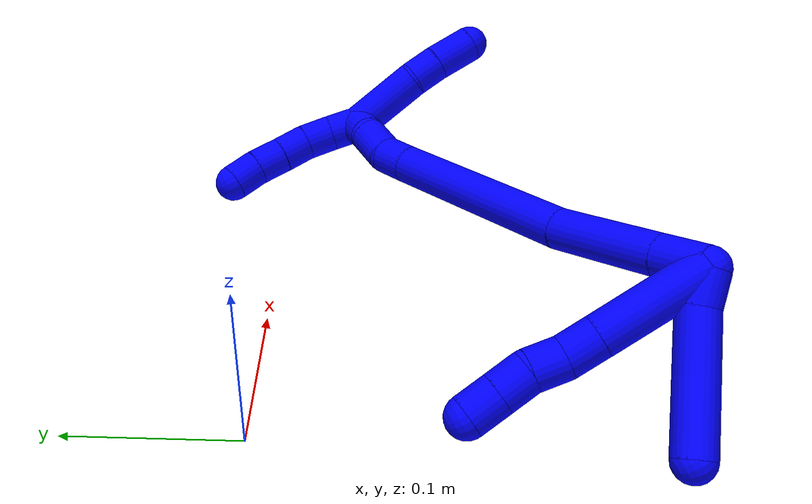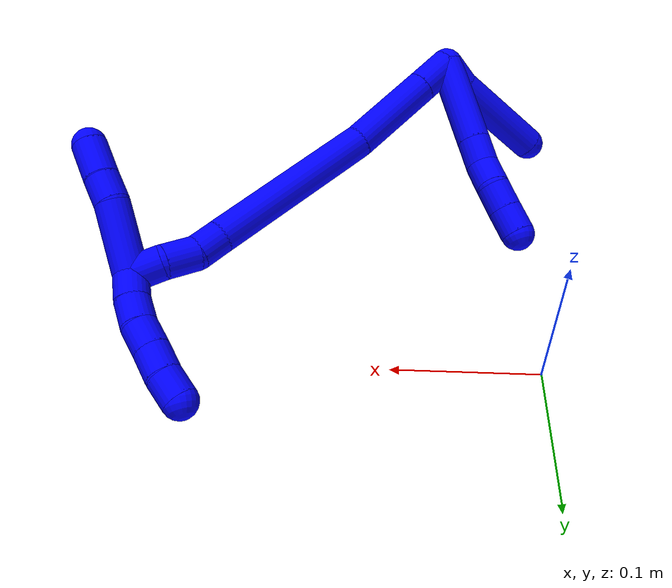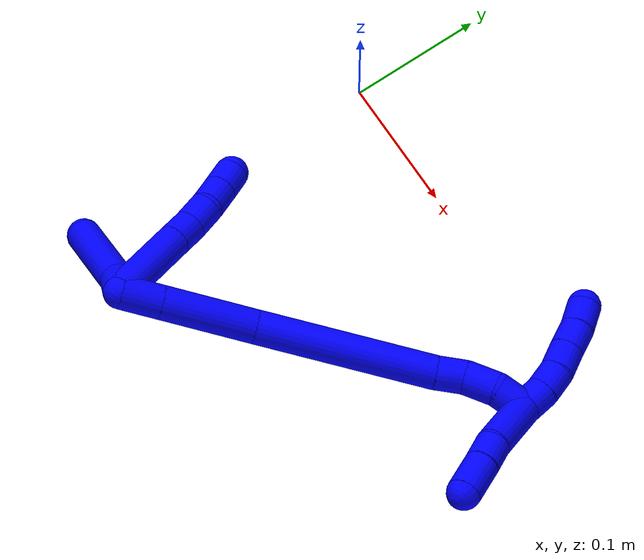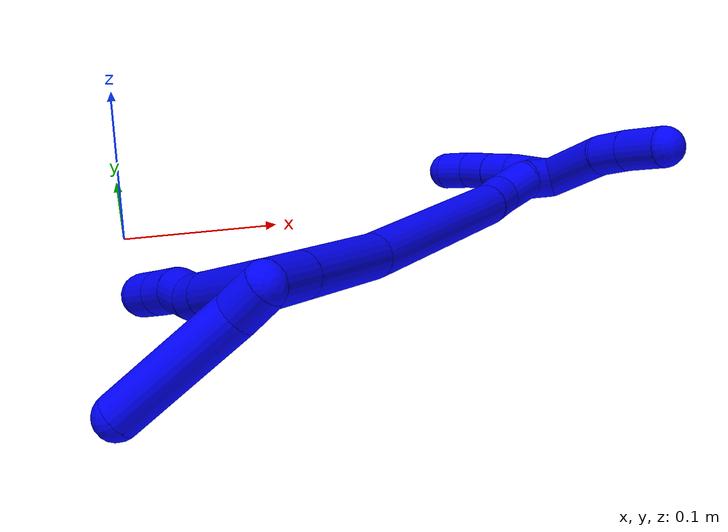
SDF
<sdf version="1.7">
 <world name="default">
  <model name="1">
   <static>0</static>
   <link name="1">
    <collision name="collision-cylinder-e_1_2_8">
     <pose>0.000649 -0.002811 -0.033808 3.05864 0.019136 0.453207</pose>
     <geometry><cylinder><radius>0.0125</radius><length>0.067862</length></cylinder></geometry>
     <surface>
      <friction><ode><mu>1.16</mu><mu2>1.16</mu2><slip1>0</slip1><slip2>0</slip2></ode></friction>
      <contact><ode><kp>1e+06</kp><kd>1</kd><max_vel>0</max_vel><min_depth>0.001</min_depth></ode></contact>
     </surface>
    </collision>
    <visual name="visual-cylinder-e_1_2_8">
     <pose>0.000649 -0.002811 -0.033808 3.05864 0.019136 0.453207</pose>
     <geometry><cylinder><radius>0.0125</radius><length>0.067862</length></cylinder></geometry>
     <material><ambient>0 0 1 1</ambient></material>
    </visual>
    <collision name="collision-cylinder-e_2_8_9">
     <pose>0.001548 -0.006484 -0.078203 3.06033 0.023474 0.562128</pose>
     <geometry><cylinder><radius>0.0125</radius><length>0.02125</length></cylinder></geometry>
     <surface>
      <friction><ode><mu>1.16</mu><mu2>1.16</mu2><slip1>0</slip1><slip2>0</slip2></ode></friction>
      <contact><ode><kp>1e+06</kp><kd>1</kd><max_vel>0</max_vel><min_depth>0.001</min_depth></ode></contact>
     </surface>
    </collision>
    <visual name="visual-cylinder-e_2_8_9">
     <pose>0.001548 -0.006484 -0.078203 3.06033 0.023474 0.562128</pose>
     <geometry><cylinder><radius>0.0125</radius><length>0.02125</length></cylinder></geometry>
     <material><ambient>0 0 1 1</ambient></material>
    </visual>
    <collision name="collision-cylinder-e_3_9_10">
     <pose>0.001265 -0.005507 -0.098957 -2.96261 -0.051472 0.558732</pose>
     <geometry><cylinder><radius>0.0125</radius><length>0.020691</length></cylinder></geometry>
     <surface>
      <friction><ode><mu>1.16</mu><mu2>1.16</mu2><slip1>0</slip1><slip2>0</slip2></ode></friction>
      <contact><ode><kp>1e+06</kp><kd>1</kd><max_vel>0</max_vel><min_depth>0.001</min_depth></ode></contact>
     </surface>
    </collision>
    <visual name="visual-cylinder-e_3_9_10">
     <pose>0.001265 -0.005507 -0.098957 -2.96261 -0.051472 0.558732</pose>
     <geometry><cylinder><radius>0.0125</radius><length>0.020691</length></cylinder></geometry>
     <material><ambient>0 0 1 1</ambient></material>
    </visual>
    <collision name="collision-cylinder-e_4_10_11">
     <pose>-0.000327 -0.004659 -0.119024 3.04182 -0.106131 -1.63268</pose>
     <geometry><cylinder><radius>0.0125</radius><length>0.020013</length></cylinder></geometry>
     <surface>
      <friction><ode><mu>1.16</mu><mu2>1.16</mu2><slip1>0</slip1><slip2>0</slip2></ode></friction>
      <contact><ode><kp>1e+06</kp><kd>1</kd><max_vel>0</max_vel><min_depth>0.001</min_depth></ode></contact>
     </surface>
    </collision>
    <visual name="visual-cylinder-e_4_10_11">
     <pose>-0.000327 -0.004659 -0.119024 3.04182 -0.106131 -1.63268</pose>
     <geometry><cylinder><radius>0.0125</radius><length>0.020013</length></cylinder></geometry>
     <material><ambient>0 0 1 1</ambient></material>
    </visual>
    <collision name="collision-cylinder-e_5_11_6">
     <pose>-0.002607 -0.006505 -0.138907 3.05607 -0.12116 -1.9129</pose>
     <geometry><cylinder><radius>0.0125</radius><length>0.020184</length></cylinder></geometry>
     <surface>
      <friction><ode><mu>1.16</mu><mu2>1.16</mu2><slip1>0</slip1><slip2>0</slip2></ode></friction>
      <contact><ode><kp>1e+06</kp><kd>1</kd><max_vel>0</max_vel><min_depth>0.001</min_depth></ode></contact>
     </surface>
    </collision>
    <visual name="visual-cylinder-e_5_11_6">
     <pose>-0.002607 -0.006505 -0.138907 3.05607 -0.12116 -1.9129</pose>
     <geometry><cylinder><radius>0.0125</radius><length>0.020184</length></cylinder></geometry>
     <material><ambient>0 0 1 1</ambient></material>
    </visual>
    <collision name="collision-cylinder-e_1_2_12">
     <pose>-0.003469 -0.006978 -0.007552 2.39566 -0.325369 -0.794378</pose>
     <geometry><cylinder><radius>0.0125</radius><length>0.021703</length></cylinder></geometry>
     <surface>
      <friction><ode><mu>1.16</mu><mu2>1.16</mu2><slip1>0</slip1><slip2>0</slip2></ode></friction>
      <contact><ode><kp>1e+06</kp><kd>1</kd><max_vel>0</max_vel><min_depth>0.001</min_depth></ode></contact>
     </surface>
    </collision>
    <visual name="visual-cylinder-e_1_2_12">
     <pose>-0.003469 -0.006978 -0.007552 2.39566 -0.325369 -0.794378</pose>
     <geometry><cylinder><radius>0.0125</radius><length>0.021703</length></cylinder></geometry>
     <material><ambient>0 0 1 1</ambient></material>
    </visual>
    <collision name="collision-cylinder-e_2_12_5">
     <pose>-0.026566 -0.04021 -0.036505 2.25472 -0.525204 -1.02999</pose>
     <geometry><cylinder><radius>0.0125</radius><length>0.078297</length></cylinder></geometry>
     <surface>
      <friction><ode><mu>1.16</mu><mu2>1.16</mu2><slip1>0</slip1><slip2>0</slip2></ode></friction>
      <contact><ode><kp>1e+06</kp><kd>1</kd><max_vel>0</max_vel><min_depth>0.001</min_depth></ode></contact>
     </surface>
    </collision>
    <visual name="visual-cylinder-e_2_12_5">
     <pose>-0.026566 -0.04021 -0.036505 2.25472 -0.525204 -1.02999</pose>
     <geometry><cylinder><radius>0.0125</radius><length>0.078297</length></cylinder></geometry>
     <material><ambient>0 0 1 1</ambient></material>
    </visual>
    <collision name="collision-cylinder-e_1_2_13">
     <pose>0.012671 0.002955 -0.007216 -2.75291 1.01917 -2.46428</pose>
     <geometry><cylinder><radius>0.0125</radius><length>0.029756</length></cylinder></geometry>
     <surface>
      <friction><ode><mu>1.16</mu><mu2>1.16</mu2><slip1>0</slip1><slip2>0</slip2></ode></friction>
      <contact><ode><kp>1e+06</kp><kd>1</kd><max_vel>0</max_vel><min_depth>0.001</min_depth></ode></contact>
     </surface>
    </collision>
    <visual name="visual-cylinder-e_1_2_13">
     <pose>0.012671 0.002955 -0.007216 -2.75291 1.01917 -2.46428</pose>
     <geometry><cylinder><radius>0.0125</radius><length>0.029756</length></cylinder></geometry>
     <material><ambient>0 0 1 1</ambient></material>
    </visual>
    <collision name="collision-cylinder-e_2_13_14">
     <pose>0.055026 0.012934 -0.031192 -2.74475 1.02144 -2.45252</pose>
     <geometry><cylinder><radius>0.0125</radius><length>0.069608</length></cylinder></geometry>
     <surface>
      <friction><ode><mu>1.16</mu><mu2>1.16</mu2><slip1>0</slip1><slip2>0</slip2></ode></friction>
      <contact><ode><kp>1e+06</kp><kd>1</kd><max_vel>0</max_vel><min_depth>0.001</min_depth></ode></contact>
     </surface>
    </collision>
    <visual name="visual-cylinder-e_2_13_14">
     <pose>0.055026 0.012934 -0.031192 -2.74475 1.02144 -2.45252</pose>
     <geometry><cylinder><radius>0.0125</radius><length>0.069608</length></cylinder></geometry>
     <material><ambient>0 0 1 1</ambient></material>
    </visual>
    <collision name="collision-cylinder-e_3_14_15">
     <pose>0.14105 0.040368 -0.075384 -2.50191 1.02533 -2.07784</pose>
     <geometry><cylinder><radius>0.0125</radius><length>0.131809</length></cylinder></geometry>
     <surface>
      <friction><ode><mu>1.16</mu><mu2>1.16</mu2><slip1>0</slip1><slip2>0</slip2></ode></friction>
      <contact><ode><kp>1e+06</kp><kd>1</kd><max_vel>0</max_vel><min_depth>0.001</min_depth></ode></contact>
     </surface>
    </collision>
    <visual name="visual-cylinder-e_3_14_15">
     <pose>0.14105 0.040368 -0.075384 -2.50191 1.02533 -2.07784</pose>
     <geometry><cylinder><radius>0.0125</radius><length>0.131809</length></cylinder></geometry>
     <material><ambient>0 0 1 1</ambient></material>
    </visual>
    <collision name="collision-cylinder-e_4_15_16">
     <pose>0.20594 0.065015 -0.107639 -2.42097 0.926696 -1.84938</pose>
     <geometry><cylinder><radius>0.0125</radius><length>0.021381</length></cylinder></geometry>
     <surface>
      <friction><ode><mu>1.16</mu><mu2>1.16</mu2><slip1>0</slip1><slip2>0</slip2></ode></friction>
      <contact><ode><kp>1e+06</kp><kd>1</kd><max_vel>0</max_vel><min_depth>0.001</min_depth></ode></contact>
     </surface>
    </collision>
    <visual name="visual-cylinder-e_4_15_16">
     <pose>0.20594 0.065015 -0.107639 -2.42097 0.926696 -1.84938</pose>
     <geometry><cylinder><radius>0.0125</radius><length>0.021381</length></cylinder></geometry>
     <material><ambient>0 0 1 1</ambient></material>
    </visual>
    <collision name="collision-cylinder-e_5_16_17">
     <pose>0.225106 0.075274 -0.114201 -1.85177 1.03741 -1.29834</pose>
     <geometry><cylinder><radius>0.0125</radius><length>0.024662</length></cylinder></geometry>
     <surface>
      <friction><ode><mu>1.16</mu><mu2>1.16</mu2><slip1>0</slip1><slip2>0</slip2></ode></friction>
      <contact><ode><kp>1e+06</kp><kd>1</kd><max_vel>0</max_vel><min_depth>0.001</min_depth></ode></contact>
     </surface>
    </collision>
    <visual name="visual-cylinder-e_5_16_17">
     <pose>0.225106 0.075274 -0.114201 -1.85177 1.03741 -1.29834</pose>
     <geometry><cylinder><radius>0.0125</radius><length>0.024662</length></cylinder></geometry>
     <material><ambient>0 0 1 1</ambient></material>
    </visual>
    <collision name="collision-cylinder-e_6_17_1">
     <pose>0.246887 0.083232 -0.117135 -2.12437 1.36986 -1.94376</pose>
     <geometry><cylinder><radius>0.0125</radius><length>0.022783</length></cylinder></geometry>
     <surface>
      <friction><ode><mu>1.16</mu><mu2>1.16</mu2><slip1>0</slip1><slip2>0</slip2></ode></friction>
      <contact><ode><kp>1e+06</kp><kd>1</kd><max_vel>0</max_vel><min_depth>0.001</min_depth></ode></contact>
     </surface>
    </collision>
    <visual name="visual-cylinder-e_6_17_1">
     <pose>0.246887 0.083232 -0.117135 -2.12437 1.36986 -1.94376</pose>
     <geometry><cylinder><radius>0.0125</radius><length>0.022783</length></cylinder></geometry>
     <material><ambient>0 0 1 1</ambient></material>
    </visual>
    <collision name="collision-cylinder-e_1_1_18">
     <pose>0.257374 0.090399 -0.093292 -0.206034 -0.026392 0.002729</pose>
     <geometry><cylinder><radius>0.0125</radius><length>0.051178</length></cylinder></geometry>
     <surface>
      <friction><ode><mu>1.16</mu><mu2>1.16</mu2><slip1>0</slip1><slip2>0</slip2></ode></friction>
      <contact><ode><kp>1e+06</kp><kd>1</kd><max_vel>0</max_vel><min_depth>0.001</min_depth></ode></contact>
     </surface>
    </collision>
    <visual name="visual-cylinder-e_1_1_18">
     <pose>0.257374 0.090399 -0.093292 -0.206034 -0.026392 0.002729</pose>
     <geometry><cylinder><radius>0.0125</radius><length>0.051178</length></cylinder></geometry>
     <material><ambient>0 0 1 1</ambient></material>
    </visual>
    <collision name="collision-cylinder-e_2_18_19">
     <pose>0.258116 0.096427 -0.058165 -0.078634 0.139172 -0.005484</pose>
     <geometry><cylinder><radius>0.0125</radius><length>0.020436</length></cylinder></geometry>
     <surface>
      <friction><ode><mu>1.16</mu><mu2>1.16</mu2><slip1>0</slip1><slip2>0</slip2></ode></friction>
      <contact><ode><kp>1e+06</kp><kd>1</kd><max_vel>0</max_vel><min_depth>0.001</min_depth></ode></contact>
     </surface>
    </collision>
    <visual name="visual-cylinder-e_2_18_19">
     <pose>0.258116 0.096427 -0.058165 -0.078634 0.139172 -0.005484</pose>
     <geometry><cylinder><radius>0.0125</radius><length>0.020436</length></cylinder></geometry>
     <material><ambient>0 0 1 1</ambient></material>
    </visual>
    <collision name="collision-cylinder-e_3_19_4">
     <pose>0.261277 0.097273 -0.033991 -0.003594 0.123156 -0.000222</pose>
     <geometry><cylinder><radius>0.0125</radius><length>0.028387</length></cylinder></geometry>
     <surface>
      <friction><ode><mu>1.16</mu><mu2>1.16</mu2><slip1>0</slip1><slip2>0</slip2></ode></friction>
      <contact><ode><kp>1e+06</kp><kd>1</kd><max_vel>0</max_vel><min_depth>0.001</min_depth></ode></contact>
     </surface>
    </collision>
    <visual name="visual-cylinder-e_3_19_4">
     <pose>0.261277 0.097273 -0.033991 -0.003594 0.123156 -0.000222</pose>
     <geometry><cylinder><radius>0.0125</radius><length>0.028387</length></cylinder></geometry>
     <material><ambient>0 0 1 1</ambient></material>
    </visual>
    <collision name="collision-cylinder-e_1_1_20">
     <pose>0.259022 0.08667 -0.128169 -2.98995 0.097402 -1.14085</pose>
     <geometry><cylinder><radius>0.0125</radius><length>0.02</length></cylinder></geometry>
     <surface>
      <friction><ode><mu>1.16</mu><mu2>1.16</mu2><slip1>0</slip1><slip2>0</slip2></ode></friction>
      <contact><ode><kp>1e+06</kp><kd>1</kd><max_vel>0</max_vel><min_depth>0.001</min_depth></ode></contact>
     </surface>
    </collision>
    <visual name="visual-cylinder-e_1_1_20">
     <pose>0.259022 0.08667 -0.128169 -2.98995 0.097402 -1.14085</pose>
     <geometry><cylinder><radius>0.0125</radius><length>0.02</length></cylinder></geometry>
     <material><ambient>0 0 1 1</ambient></material>
    </visual>
    <collision name="collision-cylinder-e_2_20_21">
     <pose>0.259055 0.089874 -0.147817 -2.96992 -0.094007 1.00053</pose>
     <geometry><cylinder><radius>0.0125</radius><length>0.02</length></cylinder></geometry>
     <surface>
      <friction><ode><mu>1.16</mu><mu2>1.16</mu2><slip1>0</slip1><slip2>0</slip2></ode></friction>
      <contact><ode><kp>1e+06</kp><kd>1</kd><max_vel>0</max_vel><min_depth>0.001</min_depth></ode></contact>
     </surface>
    </collision>
    <visual name="visual-cylinder-e_2_20_21">
     <pose>0.259055 0.089874 -0.147817 -2.96992 -0.094007 1.00053</pose>
     <geometry><cylinder><radius>0.0125</radius><length>0.02</length></cylinder></geometry>
     <material><ambient>0 0 1 1</ambient></material>
    </visual>
    <collision name="collision-cylinder-e_3_21_22">
     <pose>0.255561 0.092281 -0.167269 -3.06852 -0.258378 2.59308</pose>
     <geometry><cylinder><radius>0.0125</radius><length>0.02</length></cylinder></geometry>
     <surface>
      <friction><ode><mu>1.16</mu><mu2>1.16</mu2><slip1>0</slip1><slip2>0</slip2></ode></friction>
      <contact><ode><kp>1e+06</kp><kd>1</kd><max_vel>0</max_vel><min_depth>0.001</min_depth></ode></contact>
     </surface>
    </collision>
    <visual name="visual-cylinder-e_3_21_22">
     <pose>0.255561 0.092281 -0.167269 -3.06852 -0.258378 2.59308</pose>
     <geometry><cylinder><radius>0.0125</radius><length>0.02</length></cylinder></geometry>
     <material><ambient>0 0 1 1</ambient></material>
    </visual>
    <collision name="collision-cylinder-e_4_22_23">
     <pose>0.250742 0.093916 -0.186607 -3.046 -0.228379 2.35133</pose>
     <geometry><cylinder><radius>0.0125</radius><length>0.02</length></cylinder></geometry>
     <surface>
      <friction><ode><mu>1.16</mu><mu2>1.16</mu2><slip1>0</slip1><slip2>0</slip2></ode></friction>
      <contact><ode><kp>1e+06</kp><kd>1</kd><max_vel>0</max_vel><min_depth>0.001</min_depth></ode></contact>
     </surface>
    </collision>
    <visual name="visual-cylinder-e_4_22_23">
     <pose>0.250742 0.093916 -0.186607 -3.046 -0.228379 2.35133</pose>
     <geometry><cylinder><radius>0.0125</radius><length>0.02</length></cylinder></geometry>
     <material><ambient>0 0 1 1</ambient></material>
    </visual>
    <collision name="collision-cylinder-e_5_23_3">
     <pose>0.245173 0.09483 -0.205741 3.13988 -0.336857 -3.13151</pose>
     <geometry><cylinder><radius>0.0125</radius><length>0.02</length></cylinder></geometry>
     <surface>
      <friction><ode><mu>1.16</mu><mu2>1.16</mu2><slip1>0</slip1><slip2>0</slip2></ode></friction>
      <contact><ode><kp>1e+06</kp><kd>1</kd><max_vel>0</max_vel><min_depth>0.001</min_depth></ode></contact>
     </surface>
    </collision>
    <visual name="visual-cylinder-e_5_23_3">
     <pose>0.245173 0.09483 -0.205741 3.13988 -0.336857 -3.13151</pose>
     <geometry><cylinder><radius>0.0125</radius><length>0.02</length></cylinder></geometry>
     <material><ambient>0 0 1 1</ambient></material>
    </visual>
    <collision name="collision-sphere-3">
     <pose>0.241868 0.094814 -0.215179 0 -0 0</pose>
     <geometry><sphere><radius>0.0125</radius></sphere></geometry>
     <surface>
      <friction><ode><mu>1.16</mu><mu2>1.16</mu2><slip1>0</slip1><slip2>0</slip2></ode></friction>
      <contact><ode><kp>1e+06</kp><kd>1</kd><max_vel>0</max_vel><min_depth>0.001</min_depth></ode></contact>
     </surface>
    </collision>
    <visual name="visual-sphere-3">
     <pose>0.241868 0.094814 -0.215179 0 -0 0</pose>
     <geometry><sphere><radius>0.0125</radius></sphere></geometry>
     <material><ambient>0 0 1 1</ambient></material>
    </visual>
    <collision name="collision-sphere-23">
     <pose>0.248478 0.094846 -0.196303 0 -0 0</pose>
     <geometry><sphere><radius>0.0125</radius></sphere></geometry>
     <surface>
      <friction><ode><mu>1.16</mu><mu2>1.16</mu2><slip1>0</slip1><slip2>0</slip2></ode></friction>
      <contact><ode><kp>1e+06</kp><kd>1</kd><max_vel>0</max_vel><min_depth>0.001</min_depth></ode></contact>
     </surface>
    </collision>
    <visual name="visual-sphere-23">
     <pose>0.248478 0.094846 -0.196303 0 -0 0</pose>
     <geometry><sphere><radius>0.0125</radius></sphere></geometry>
     <material><ambient>0 0 1 1</ambient></material>
    </visual>
    <collision name="collision-sphere-22">
     <pose>0.253006 0.092987 -0.176911 0 -0 0</pose>
     <geometry><sphere><radius>0.0125</radius></sphere></geometry>
     <surface>
      <friction><ode><mu>1.16</mu><mu2>1.16</mu2><slip1>0</slip1><slip2>0</slip2></ode></friction>
      <contact><ode><kp>1e+06</kp><kd>1</kd><max_vel>0</max_vel><min_depth>0.001</min_depth></ode></contact>
     </surface>
    </collision>
    <visual name="visual-sphere-22">
     <pose>0.253006 0.092987 -0.176911 0 -0 0</pose>
     <geometry><sphere><radius>0.0125</radius></sphere></geometry>
     <material><ambient>0 0 1 1</ambient></material>
    </visual>
    <collision name="collision-sphere-21">
     <pose>0.258117 0.091575 -0.157626 0 -0 0</pose>
     <geometry><sphere><radius>0.0125</radius></sphere></geometry>
     <surface>
      <friction><ode><mu>1.16</mu><mu2>1.16</mu2><slip1>0</slip1><slip2>0</slip2></ode></friction>
      <contact><ode><kp>1e+06</kp><kd>1</kd><max_vel>0</max_vel><min_depth>0.001</min_depth></ode></contact>
     </surface>
    </collision>
    <visual name="visual-sphere-21">
     <pose>0.258117 0.091575 -0.157626 0 -0 0</pose>
     <geometry><sphere><radius>0.0125</radius></sphere></geometry>
     <material><ambient>0 0 1 1</ambient></material>
    </visual>
    <collision name="collision-sphere-20">
     <pose>0.259994 0.088173 -0.138007 0 -0 0</pose>
     <geometry><sphere><radius>0.0125</radius></sphere></geometry>
     <surface>
      <friction><ode><mu>1.16</mu><mu2>1.16</mu2><slip1>0</slip1><slip2>0</slip2></ode></friction>
      <contact><ode><kp>1e+06</kp><kd>1</kd><max_vel>0</max_vel><min_depth>0.001</min_depth></ode></contact>
     </surface>
    </collision>
    <visual name="visual-sphere-20">
     <pose>0.259994 0.088173 -0.138007 0 -0 0</pose>
     <geometry><sphere><radius>0.0125</radius></sphere></geometry>
     <material><ambient>0 0 1 1</ambient></material>
    </visual>
    <collision name="collision-sphere-4">
     <pose>0.263021 0.097324 -0.019906 0 -0 0</pose>
     <geometry><sphere><radius>0.0125</radius></sphere></geometry>
     <surface>
      <friction><ode><mu>1.16</mu><mu2>1.16</mu2><slip1>0</slip1><slip2>0</slip2></ode></friction>
      <contact><ode><kp>1e+06</kp><kd>1</kd><max_vel>0</max_vel><min_depth>0.001</min_depth></ode></contact>
     </surface>
    </collision>
    <visual name="visual-sphere-4">
     <pose>0.263021 0.097324 -0.019906 0 -0 0</pose>
     <geometry><sphere><radius>0.0125</radius></sphere></geometry>
     <material><ambient>0 0 1 1</ambient></material>
    </visual>
    <collision name="collision-sphere-6">
     <pose>-0.003827 -0.007361 -0.148888 0 -0 0</pose>
     <geometry><sphere><radius>0.0125</radius></sphere></geometry>
     <surface>
      <friction><ode><mu>1.16</mu><mu2>1.16</mu2><slip1>0</slip1><slip2>0</slip2></ode></friction>
      <contact><ode><kp>1e+06</kp><kd>1</kd><max_vel>0</max_vel><min_depth>0.001</min_depth></ode></contact>
     </surface>
    </collision>
    <visual name="visual-sphere-6">
     <pose>-0.003827 -0.007361 -0.148888 0 -0 0</pose>
     <geometry><sphere><radius>0.0125</radius></sphere></geometry>
     <material><ambient>0 0 1 1</ambient></material>
    </visual>
    <collision name="collision-sphere-11">
     <pose>-0.001387 -0.00565 -0.128925 0 -0 0</pose>
     <geometry><sphere><radius>0.0125</radius></sphere></geometry>
     <surface>
      <friction><ode><mu>1.16</mu><mu2>1.16</mu2><slip1>0</slip1><slip2>0</slip2></ode></friction>
      <contact><ode><kp>1e+06</kp><kd>1</kd><max_vel>0</max_vel><min_depth>0.001</min_depth></ode></contact>
     </surface>
    </collision>
    <visual name="visual-sphere-11">
     <pose>-0.001387 -0.00565 -0.128925 0 -0 0</pose>
     <geometry><sphere><radius>0.0125</radius></sphere></geometry>
     <material><ambient>0 0 1 1</ambient></material>
    </visual>
    <collision name="collision-sphere-10">
     <pose>0.000733 -0.003667 -0.109124 0 -0 0</pose>
     <geometry><sphere><radius>0.0125</radius></sphere></geometry>
     <surface>
      <friction><ode><mu>1.16</mu><mu2>1.16</mu2><slip1>0</slip1><slip2>0</slip2></ode></friction>
      <contact><ode><kp>1e+06</kp><kd>1</kd><max_vel>0</max_vel><min_depth>0.001</min_depth></ode></contact>
     </surface>
    </collision>
    <visual name="visual-sphere-10">
     <pose>0.000733 -0.003667 -0.109124 0 -0 0</pose>
     <geometry><sphere><radius>0.0125</radius></sphere></geometry>
     <material><ambient>0 0 1 1</ambient></material>
    </visual>
    <collision name="collision-sphere-9">
     <pose>0.001797 -0.007346 -0.08879 0 -0 0</pose>
     <geometry><sphere><radius>0.0125</radius></sphere></geometry>
     <surface>
      <friction><ode><mu>1.16</mu><mu2>1.16</mu2><slip1>0</slip1><slip2>0</slip2></ode></friction>
      <contact><ode><kp>1e+06</kp><kd>1</kd><max_vel>0</max_vel><min_depth>0.001</min_depth></ode></contact>
     </surface>
    </collision>
    <visual name="visual-sphere-9">
     <pose>0.001797 -0.007346 -0.08879 0 -0 0</pose>
     <geometry><sphere><radius>0.0125</radius></sphere></geometry>
     <material><ambient>0 0 1 1</ambient></material>
    </visual>
    <collision name="collision-sphere-2">
     <geometry><sphere><radius>0.0125</radius></sphere></geometry>
     <surface>
      <friction><ode><mu>1.16</mu><mu2>1.16</mu2><slip1>0</slip1><slip2>0</slip2></ode></friction>
      <contact><ode><kp>1e+06</kp><kd>1</kd><max_vel>0</max_vel><min_depth>0.001</min_depth></ode></contact>
     </surface>
    </collision>
    <visual name="visual-sphere-2">
     <geometry><sphere><radius>0.0125</radius></sphere></geometry>
     <material><ambient>0 0 1 1</ambient></material>
    </visual>
    <collision name="collision-sphere-19">
     <pose>0.259533 0.097222 -0.048077 0 -0 0</pose>
     <geometry><sphere><radius>0.0125</radius></sphere></geometry>
     <surface>
      <friction><ode><mu>1.16</mu><mu2>1.16</mu2><slip1>0</slip1><slip2>0</slip2></ode></friction>
      <contact><ode><kp>1e+06</kp><kd>1</kd><max_vel>0</max_vel><min_depth>0.001</min_depth></ode></contact>
     </surface>
    </collision>
    <visual name="visual-sphere-19">
     <pose>0.259533 0.097222 -0.048077 0 -0 0</pose>
     <geometry><sphere><radius>0.0125</radius></sphere></geometry>
     <material><ambient>0 0 1 1</ambient></material>
    </visual>
    <collision name="collision-sphere-8">
     <pose>0.001298 -0.005622 -0.067616 0 -0 0</pose>
     <geometry><sphere><radius>0.0125</radius></sphere></geometry>
     <surface>
      <friction><ode><mu>1.16</mu><mu2>1.16</mu2><slip1>0</slip1><slip2>0</slip2></ode></friction>
      <contact><ode><kp>1e+06</kp><kd>1</kd><max_vel>0</max_vel><min_depth>0.001</min_depth></ode></contact>
     </surface>
    </collision>
    <visual name="visual-sphere-8">
     <pose>0.001298 -0.005622 -0.067616 0 -0 0</pose>
     <geometry><sphere><radius>0.0125</radius></sphere></geometry>
     <material><ambient>0 0 1 1</ambient></material>
    </visual>
    <collision name="collision-sphere-12">
     <pose>-0.006937 -0.013956 -0.015103 0 -0 0</pose>
     <geometry><sphere><radius>0.0125</radius></sphere></geometry>
     <surface>
      <friction><ode><mu>1.16</mu><mu2>1.16</mu2><slip1>0</slip1><slip2>0</slip2></ode></friction>
      <contact><ode><kp>1e+06</kp><kd>1</kd><max_vel>0</max_vel><min_depth>0.001</min_depth></ode></contact>
     </surface>
    </collision>
    <visual name="visual-sphere-12">
     <pose>-0.006937 -0.013956 -0.015103 0 -0 0</pose>
     <geometry><sphere><radius>0.0125</radius></sphere></geometry>
     <material><ambient>0 0 1 1</ambient></material>
    </visual>
    <collision name="collision-sphere-5">
     <pose>-0.046195 -0.066465 -0.057907 0 -0 0</pose>
     <geometry><sphere><radius>0.0125</radius></sphere></geometry>
     <surface>
      <friction><ode><mu>1.16</mu><mu2>1.16</mu2><slip1>0</slip1><slip2>0</slip2></ode></friction>
      <contact><ode><kp>1e+06</kp><kd>1</kd><max_vel>0</max_vel><min_depth>0.001</min_depth></ode></contact>
     </surface>
    </collision>
    <visual name="visual-sphere-5">
     <pose>-0.046195 -0.066465 -0.057907 0 -0 0</pose>
     <geometry><sphere><radius>0.0125</radius></sphere></geometry>
     <material><ambient>0 0 1 1</ambient></material>
    </visual>
    <collision name="collision-sphere-13">
     <pose>0.025343 0.00591 -0.014431 0 -0 0</pose>
     <geometry><sphere><radius>0.0125</radius></sphere></geometry>
     <surface>
      <friction><ode><mu>1.16</mu><mu2>1.16</mu2><slip1>0</slip1><slip2>0</slip2></ode></friction>
      <contact><ode><kp>1e+06</kp><kd>1</kd><max_vel>0</max_vel><min_depth>0.001</min_depth></ode></contact>
     </surface>
    </collision>
    <visual name="visual-sphere-13">
     <pose>0.025343 0.00591 -0.014431 0 -0 0</pose>
     <geometry><sphere><radius>0.0125</radius></sphere></geometry>
     <material><ambient>0 0 1 1</ambient></material>
    </visual>
    <collision name="collision-sphere-14">
     <pose>0.084709 0.019958 -0.047952 0 -0 0</pose>
     <geometry><sphere><radius>0.0125</radius></sphere></geometry>
     <surface>
      <friction><ode><mu>1.16</mu><mu2>1.16</mu2><slip1>0</slip1><slip2>0</slip2></ode></friction>
      <contact><ode><kp>1e+06</kp><kd>1</kd><max_vel>0</max_vel><min_depth>0.001</min_depth></ode></contact>
     </surface>
    </collision>
    <visual name="visual-sphere-14">
     <pose>0.084709 0.019958 -0.047952 0 -0 0</pose>
     <geometry><sphere><radius>0.0125</radius></sphere></geometry>
     <material><ambient>0 0 1 1</ambient></material>
    </visual>
    <collision name="collision-sphere-15">
     <pose>0.197391 0.060779 -0.102816 0 -0 0</pose>
     <geometry><sphere><radius>0.0125</radius></sphere></geometry>
     <surface>
      <friction><ode><mu>1.16</mu><mu2>1.16</mu2><slip1>0</slip1><slip2>0</slip2></ode></friction>
      <contact><ode><kp>1e+06</kp><kd>1</kd><max_vel>0</max_vel><min_depth>0.001</min_depth></ode></contact>
     </surface>
    </collision>
    <visual name="visual-sphere-15">
     <pose>0.197391 0.060779 -0.102816 0 -0 0</pose>
     <geometry><sphere><radius>0.0125</radius></sphere></geometry>
     <material><ambient>0 0 1 1</ambient></material>
    </visual>
    <collision name="collision-sphere-16">
     <pose>0.214488 0.06925 -0.112463 0 -0 0</pose>
     <geometry><sphere><radius>0.0125</radius></sphere></geometry>
     <surface>
      <friction><ode><mu>1.16</mu><mu2>1.16</mu2><slip1>0</slip1><slip2>0</slip2></ode></friction>
      <contact><ode><kp>1e+06</kp><kd>1</kd><max_vel>0</max_vel><min_depth>0.001</min_depth></ode></contact>
     </surface>
    </collision>
    <visual name="visual-sphere-16">
     <pose>0.214488 0.06925 -0.112463 0 -0 0</pose>
     <geometry><sphere><radius>0.0125</radius></sphere></geometry>
     <material><ambient>0 0 1 1</ambient></material>
    </visual>
    <collision name="collision-sphere-17">
     <pose>0.235725 0.081298 -0.11594 0 -0 0</pose>
     <geometry><sphere><radius>0.0125</radius></sphere></geometry>
     <surface>
      <friction><ode><mu>1.16</mu><mu2>1.16</mu2><slip1>0</slip1><slip2>0</slip2></ode></friction>
      <contact><ode><kp>1e+06</kp><kd>1</kd><max_vel>0</max_vel><min_depth>0.001</min_depth></ode></contact>
     </surface>
    </collision>
    <visual name="visual-sphere-17">
     <pose>0.235725 0.081298 -0.11594 0 -0 0</pose>
     <geometry><sphere><radius>0.0125</radius></sphere></geometry>
     <material><ambient>0 0 1 1</ambient></material>
    </visual>
    <collision name="collision-sphere-1">
     <pose>0.258049 0.085166 -0.118331 0 -0 0</pose>
     <geometry><sphere><radius>0.0125</radius></sphere></geometry>
     <surface>
      <friction><ode><mu>1.16</mu><mu2>1.16</mu2><slip1>0</slip1><slip2>0</slip2></ode></friction>
      <contact><ode><kp>1e+06</kp><kd>1</kd><max_vel>0</max_vel><min_depth>0.001</min_depth></ode></contact>
     </surface>
    </collision>
    <visual name="visual-sphere-1">
     <pose>0.258049 0.085166 -0.118331 0 -0 0</pose>
     <geometry><sphere><radius>0.0125</radius></sphere></geometry>
     <material><ambient>0 0 1 1</ambient></material>
    </visual>
    <collision name="collision-sphere-18">
     <pose>0.256699 0.095633 -0.068253 0 -0 0</pose>
     <geometry><sphere><radius>0.0125</radius></sphere></geometry>
     <surface>
      <friction><ode><mu>1.16</mu><mu2>1.16</mu2><slip1>0</slip1><slip2>0</slip2></ode></friction>
      <contact><ode><kp>1e+06</kp><kd>1</kd><max_vel>0</max_vel><min_depth>0.001</min_depth></ode></contact>
     </surface>
    </collision>
    <visual name="visual-sphere-18">
     <pose>0.256699 0.095633 -0.068253 0 -0 0</pose>
     <geometry><sphere><radius>0.0125</radius></sphere></geometry>
     <material><ambient>0 0 1 1</ambient></material>
    </visual>
    <inertial>
     <pose>0.116696 0.03466 -0.07728 0 -0 0</pose>
     <mass>0.75</mass>
     <inertia>
      <ixx>-0.000107</ixx>
      <ixy>0</ixy>
      <ixz>0</ixz>
      <iyy>7.2e-05</iyy>
      <iyz>0</iyz>
      <izz>-0.000245</izz>
     </inertia>
    </inertial>
   </link>
   <pose>0.057494 -0.241997 0.078848 1.16246 0.288717 0.22449</pose>
  </model>
 </world>
</sdf>
